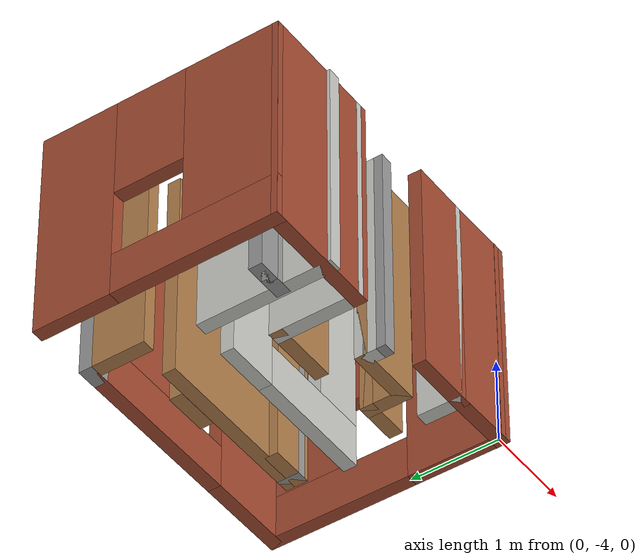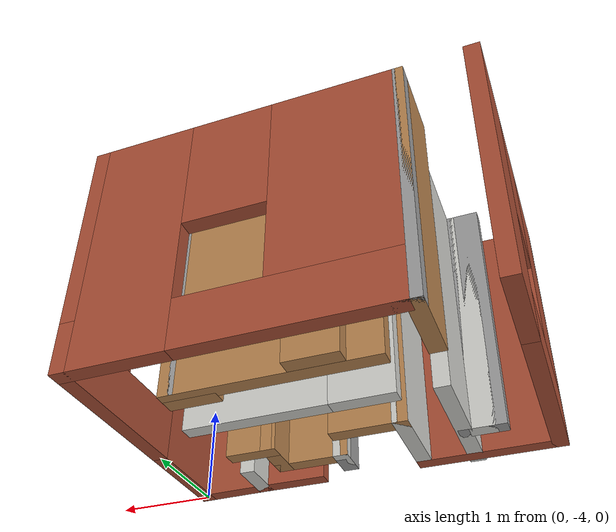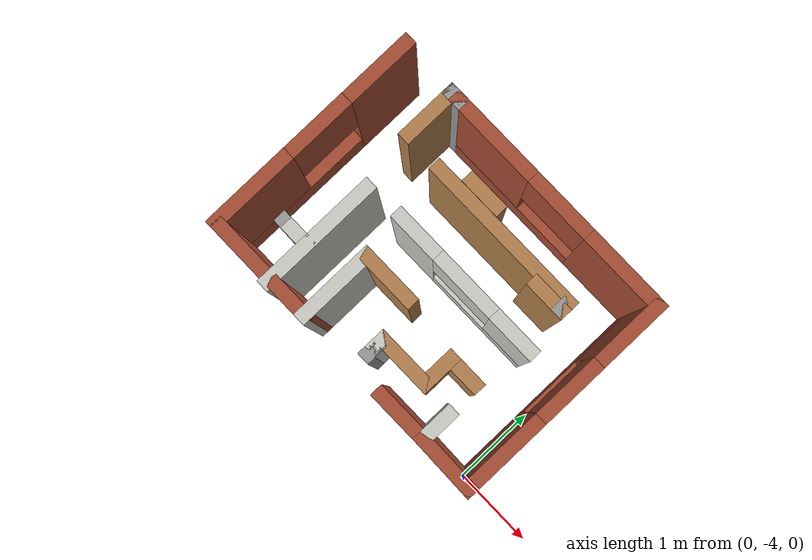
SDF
<?xml version='1.0'?>
<sdf version='1.6'>
  <model name='labyrinth'>
    <pose frame=''>-1.80242 -2.69405 0 0 -0 0</pose>
    <link name='Wall_0'>
      <collision name='Wall_0_Collision'>
        <geometry>
          <box>
            <size>0.25 0.15 2.5</size>
          </box>
        </geometry>
        <pose frame=''>0 0 1.25 0 -0 0</pose>
      </collision>
      <visual name='Wall_0_Visual'>
        <pose frame=''>0 0 1.25 0 -0 0</pose>
        <geometry>
          <box>
            <size>0.25 0.15 2.5</size>
          </box>
        </geometry>
        <material>
          <script>
            <uri>file://media/materials/scripts/gazebo.material</uri>
            <name>Gazebo/Grey</name>
          </script>
          <ambient>1 1 1 1</ambient>
        </material>
        <meta>
          <layer>0</layer>
        </meta>
      </visual>
      <pose frame=''>0.17411 -1.04199 0 0 -0 1.5708</pose>
    </link>
    <link name='Wall_1'>
      <collision name='Wall_1_Collision'>
        <geometry>
          <box>
            <size>0.25 0.15 2.5</size>
          </box>
        </geometry>
        <pose frame=''>0 0 1.25 0 -0 0</pose>
      </collision>
      <visual name='Wall_1_Visual'>
        <pose frame=''>0 0 1.25 0 -0 0</pose>
        <geometry>
          <box>
            <size>0.25 0.15 2.5</size>
          </box>
        </geometry>
        <material>
          <script>
            <uri>file://media/materials/scripts/gazebo.material</uri>
            <name>Gazebo/CeilingTiled</name>
          </script>
          <ambient>1 1 1 1</ambient>
        </material>
        <meta>
          <layer>0</layer>
        </meta>
      </visual>
      <pose frame=''>0.17411 -0.94199 0 0 -0 1.5708</pose>
    </link>
    <link name='Wall_10'>
      <collision name='Wall_10_Collision'>
        <geometry>
          <box>
            <size>1 0.15 2.5</size>
          </box>
        </geometry>
        <pose frame=''>0 0 1.25 0 -0 0</pose>
      </collision>
      <visual name='Wall_10_Visual'>
        <pose frame=''>0 0 1.25 0 -0 0</pose>
        <geometry>
          <box>
            <size>1 0.15 2.5</size>
          </box>
        </geometry>
        <material>
          <script>
            <uri>file://media/materials/scripts/gazebo.material</uri>
            <name>Gazebo/CeilingTiled</name>
          </script>
          <ambient>1 1 1 1</ambient>
        </material>
        <meta>
          <layer>0</layer>
        </meta>
      </visual>
      <pose frame=''>-0.542589 -0.860288 0 0 -0 1.5708</pose>
    </link>
    <link name='Wall_11'>
      <collision name='Wall_11_Collision'>
        <geometry>
          <box>
            <size>0.75 0.15 2.5</size>
          </box>
        </geometry>
        <pose frame=''>0 0 1.25 0 -0 0</pose>
      </collision>
      <visual name='Wall_11_Visual'>
        <pose frame=''>0 0 1.25 0 -0 0</pose>
        <geometry>
          <box>
            <size>0.75 0.15 2.5</size>
          </box>
        </geometry>
        <material>
          <script>
            <uri>file://media/materials/scripts/gazebo.material</uri>
            <name>Gazebo/Wood</name>
          </script>
          <ambient>1 1 1 1</ambient>
        </material>
        <meta>
          <layer>0</layer>
        </meta>
      </visual>
      <pose frame=''>-0.242589 -0.435288 0 0 -0 0</pose>
    </link>
    <link name='Wall_2'>
      <collision name='Wall_2_Collision'>
        <geometry>
          <box>
            <size>0.75 0.15 2.5</size>
          </box>
        </geometry>
        <pose frame=''>0 0 1.25 0 -0 0</pose>
      </collision>
      <visual name='Wall_2_Visual'>
        <pose frame=''>0 0 1.25 0 -0 0</pose>
        <geometry>
          <box>
            <size>0.75 0.15 2.5</size>
          </box>
        </geometry>
        <material>
          <script>
            <uri>file://media/materials/scripts/gazebo.material</uri>
            <name>Gazebo/Wood</name>
          </script>
          <ambient>1 1 1 1</ambient>
        </material>
        <meta>
          <layer>0</layer>
        </meta>
      </visual>
      <pose frame=''>0.47411 -0.89199 0 0 -0 0</pose>
    </link>
    <link name='Wall_23'>
      <collision name='Wall_23_Collision'>
        <geometry>
          <box>
            <size>1.5 0.15 2.5</size>
          </box>
        </geometry>
        <pose frame=''>0 0 1.25 0 -0 0</pose>
      </collision>
      <visual name='Wall_23_Visual'>
        <pose frame=''>0 0 1.25 0 -0 0</pose>
        <geometry>
          <box>
            <size>1.5 0.15 2.5</size>
          </box>
        </geometry>
        <material>
          <script>
            <uri>file://media/materials/scripts/gazebo.material</uri>
            <name>Gazebo/CeilingTiled</name>
          </script>
          <ambient>1 1 1 1</ambient>
        </material>
        <meta>
          <layer>0</layer>
        </meta>
      </visual>
      <pose frame=''>-1.03415 -0.644148 0 0 -0 1.5708</pose>
    </link>
    <link name='Wall_25'>
      <pose frame=''>0.336979 0.079718 0 0 -0 0</pose>
      <visual name='Wall_25_Visual_0'>
        <pose frame=''>-0.694798 0 1.25 0 -0 0</pose>
        <geometry>
          <box>
            <size>0.610403 0.15 2.5</size>
          </box>
        </geometry>
        <material>
          <script>
            <uri>file://media/materials/scripts/gazebo.material</uri>
            <name>Gazebo/CeilingTiled</name>
          </script>
          <ambient>1 1 1 1</ambient>
        </material>
        <meta>
          <layer>0</layer>
        </meta>
      </visual>
      <collision name='Wall_25_Collision_0'>
        <geometry>
          <box>
            <size>0.610403 0.15 2.5</size>
          </box>
        </geometry>
        <pose frame=''>-0.694798 0 1.25 0 -0 0</pose>
      </collision>
      <visual name='Wall_25_Visual_1'>
        <pose frame=''>0.305202 0 0.25 0 -0 0</pose>
        <geometry>
          <box>
            <size>1.3896 0.15 0.5</size>
          </box>
        </geometry>
        <material>
          <script>
            <uri>file://media/materials/scripts/gazebo.material</uri>
            <name>Gazebo/CeilingTiled</name>
          </script>
          <ambient>1 1 1 1</ambient>
        </material>
        <meta>
          <layer>0</layer>
        </meta>
      </visual>
      <collision name='Wall_25_Collision_1'>
        <geometry>
          <box>
            <size>1.3896 0.15 0.5</size>
          </box>
        </geometry>
        <pose frame=''>0.305202 0 0.25 0 -0 0</pose>
      </collision>
      <visual name='Wall_25_Visual_2'>
        <pose frame=''>0.705202 0 1.5 0 -0 0</pose>
        <geometry>
          <box>
            <size>0.589597 0.15 2</size>
          </box>
        </geometry>
        <material>
          <script>
            <uri>file://media/materials/scripts/gazebo.material</uri>
            <name>Gazebo/CeilingTiled</name>
          </script>
          <ambient>1 1 1 1</ambient>
        </material>
        <meta>
          <layer>0</layer>
        </meta>
      </visual>
      <collision name='Wall_25_Collision_2'>
        <geometry>
          <box>
            <size>0.589597 0.15 2</size>
          </box>
        </geometry>
        <pose frame=''>0.705202 0 1.5 0 -0 0</pose>
      </collision>
      <visual name='Wall_25_Visual_3'>
        <pose frame=''>0.010403 0 1.9 0 -0 0</pose>
        <geometry>
          <box>
            <size>0.8 0.15 1.2</size>
          </box>
        </geometry>
        <material>
          <script>
            <uri>file://media/materials/scripts/gazebo.material</uri>
            <name>Gazebo/CeilingTiled</name>
          </script>
          <ambient>1 1 1 1</ambient>
        </material>
        <meta>
          <layer>0</layer>
        </meta>
      </visual>
      <collision name='Wall_25_Collision_3'>
        <geometry>
          <box>
            <size>0.8 0.15 1.2</size>
          </box>
        </geometry>
        <pose frame=''>0.010403 0 1.9 0 -0 0</pose>
      </collision>
    </link>
    <link name='Wall_27'>
      <pose frame=''>1.81652 0.003537 0 0 -0 1.5708</pose>
      <visual name='Wall_27_Visual_0'>
        <pose frame=''>-0.842738 0 1.25 0 -0 0</pose>
        <geometry>
          <box>
            <size>1.06452 0.15 2.5</size>
          </box>
        </geometry>
        <material>
          <script>
            <uri>file://media/materials/scripts/gazebo.material</uri>
            <name>Gazebo/Bricks</name>
          </script>
          <ambient>1 1 1 1</ambient>
        </material>
        <meta>
          <layer>0</layer>
        </meta>
      </visual>
      <collision name='Wall_27_Collision_0'>
        <geometry>
          <box>
            <size>1.06452 0.15 2.5</size>
          </box>
        </geometry>
        <pose frame=''>-0.842738 0 1.25 0 -0 0</pose>
      </collision>
      <visual name='Wall_27_Visual_1'>
        <pose frame=''>0.532262 0 0.25 0 -0 0</pose>
        <geometry>
          <box>
            <size>1.68548 0.15 0.5</size>
          </box>
        </geometry>
        <material>
          <script>
            <uri>file://media/materials/scripts/gazebo.material</uri>
            <name>Gazebo/Bricks</name>
          </script>
          <ambient>1 1 1 1</ambient>
        </material>
        <meta>
          <layer>0</layer>
        </meta>
      </visual>
      <collision name='Wall_27_Collision_1'>
        <geometry>
          <box>
            <size>1.68548 0.15 0.5</size>
          </box>
        </geometry>
        <pose frame=''>0.532262 0 0.25 0 -0 0</pose>
      </collision>
      <visual name='Wall_27_Visual_2'>
        <pose frame=''>0.932262 0 1.5 0 -0 0</pose>
        <geometry>
          <box>
            <size>0.885476 0.15 2</size>
          </box>
        </geometry>
        <material>
          <script>
            <uri>file://media/materials/scripts/gazebo.material</uri>
            <name>Gazebo/Bricks</name>
          </script>
          <ambient>1 1 1 1</ambient>
        </material>
        <meta>
          <layer>0</layer>
        </meta>
      </visual>
      <collision name='Wall_27_Collision_2'>
        <geometry>
          <box>
            <size>0.885476 0.15 2</size>
          </box>
        </geometry>
        <pose frame=''>0.932262 0 1.5 0 -0 0</pose>
      </collision>
      <visual name='Wall_27_Visual_3'>
        <pose frame=''>0.089524 0 1.9 0 -0 0</pose>
        <geometry>
          <box>
            <size>0.8 0.15 1.2</size>
          </box>
        </geometry>
        <material>
          <script>
            <uri>file://media/materials/scripts/gazebo.material</uri>
            <name>Gazebo/Bricks</name>
          </script>
          <ambient>1 1 1 1</ambient>
        </material>
        <meta>
          <layer>0</layer>
        </meta>
      </visual>
      <collision name='Wall_27_Collision_3'>
        <geometry>
          <box>
            <size>0.8 0.15 1.2</size>
          </box>
        </geometry>
        <pose frame=''>0.089524 0 1.9 0 -0 0</pose>
      </collision>
    </link>
    <link name='Wall_28'>
      <pose frame=''>0.391516 1.30354 0 0 -0 3.14159</pose>
      <visual name='Wall_28_Visual_0'>
        <pose frame=''>-0.971411 0 1.25 0 -0 0</pose>
        <geometry>
          <box>
            <size>1.05718 0.15 2.5</size>
          </box>
        </geometry>
        <material>
          <script>
            <uri>file://media/materials/scripts/gazebo.material</uri>
            <name>Gazebo/Bricks</name>
          </script>
          <ambient>1 1 1 1</ambient>
        </material>
        <meta>
          <layer>0</layer>
        </meta>
      </visual>
      <collision name='Wall_28_Collision_0'>
        <geometry>
          <box>
            <size>1.05718 0.15 2.5</size>
          </box>
        </geometry>
        <pose frame=''>-0.971411 0 1.25 0 -0 0</pose>
      </collision>
      <visual name='Wall_28_Visual_1'>
        <pose frame=''>0.528589 0 0.25 0 -0 0</pose>
        <geometry>
          <box>
            <size>1.94282 0.15 0.5</size>
          </box>
        </geometry>
        <material>
          <script>
            <uri>file://media/materials/scripts/gazebo.material</uri>
            <name>Gazebo/Bricks</name>
          </script>
          <ambient>1 1 1 1</ambient>
        </material>
        <meta>
          <layer>0</layer>
        </meta>
      </visual>
      <collision name='Wall_28_Collision_1'>
        <geometry>
          <box>
            <size>1.94282 0.15 0.5</size>
          </box>
        </geometry>
        <pose frame=''>0.528589 0 0.25 0 -0 0</pose>
      </collision>
      <visual name='Wall_28_Visual_2'>
        <pose frame=''>0.928589 0 1.5 0 -0 0</pose>
        <geometry>
          <box>
            <size>1.14282 0.15 2</size>
          </box>
        </geometry>
        <material>
          <script>
            <uri>file://media/materials/scripts/gazebo.material</uri>
            <name>Gazebo/Bricks</name>
          </script>
          <ambient>1 1 1 1</ambient>
        </material>
        <meta>
          <layer>0</layer>
        </meta>
      </visual>
      <collision name='Wall_28_Collision_2'>
        <geometry>
          <box>
            <size>1.14282 0.15 2</size>
          </box>
        </geometry>
        <pose frame=''>0.928589 0 1.5 0 -0 0</pose>
      </collision>
      <visual name='Wall_28_Visual_3'>
        <pose frame=''>-0.042823 0 1.9 0 -0 0</pose>
        <geometry>
          <box>
            <size>0.8 0.15 1.2</size>
          </box>
        </geometry>
        <material>
          <script>
            <uri>file://media/materials/scripts/gazebo.material</uri>
            <name>Gazebo/Bricks</name>
          </script>
          <ambient>1 1 1 1</ambient>
        </material>
        <meta>
          <layer>0</layer>
        </meta>
      </visual>
      <collision name='Wall_28_Collision_3'>
        <geometry>
          <box>
            <size>0.8 0.15 1.2</size>
          </box>
        </geometry>
        <pose frame=''>-0.042823 0 1.9 0 -0 0</pose>
      </collision>
    </link>
    <link name='Wall_3'>
      <collision name='Wall_3_Collision'>
        <geometry>
          <box>
            <size>0.5 0.15 2.5</size>
          </box>
        </geometry>
        <pose frame=''>0 0 1.25 0 -0 0</pose>
      </collision>
      <visual name='Wall_3_Visual'>
        <pose frame=''>0 0 1.25 0 -0 0</pose>
        <geometry>
          <box>
            <size>0.5 0.15 2.5</size>
          </box>
        </geometry>
        <material>
          <script>
            <uri>file://media/materials/scripts/gazebo.material</uri>
            <name>Gazebo/Wood</name>
          </script>
          <ambient>1 1 1 1</ambient>
        </material>
        <meta>
          <layer>0</layer>
        </meta>
      </visual>
      <pose frame=''>0.77411 -0.71699 0 0 -0 1.5708</pose>
    </link>
    <link name='Wall_30'>
      <collision name='Wall_30_Collision'>
        <geometry>
          <box>
            <size>2 0.15 2.5</size>
          </box>
        </geometry>
        <pose frame=''>0 0 1.25 0 -0 0</pose>
      </collision>
      <visual name='Wall_30_Visual'>
        <pose frame=''>0 0 1.25 0 -0 0</pose>
        <geometry>
          <box>
            <size>2 0.15 2.5</size>
          </box>
        </geometry>
        <material>
          <script>
            <uri>file://media/materials/scripts/gazebo.material</uri>
            <name>Gazebo/Wood</name>
          </script>
          <ambient>1 1 1 1</ambient>
        </material>
        <meta>
          <layer>0</layer>
        </meta>
      </visual>
      <pose frame=''>0.253804 0.684633 0 0 -0 0</pose>
    </link>
    <link name='Wall_32'>
      <collision name='Wall_32_Collision'>
        <geometry>
          <box>
            <size>0.5 0.15 2.5</size>
          </box>
        </geometry>
        <pose frame=''>0 0 1.25 0 -0 0</pose>
      </collision>
      <visual name='Wall_32_Visual'>
        <pose frame=''>0 0 1.25 0 -0 0</pose>
        <geometry>
          <box>
            <size>0.5 0.15 2.5</size>
          </box>
        </geometry>
        <material>
          <script>
            <uri>file://media/materials/scripts/gazebo.material</uri>
            <name>Gazebo/Wood</name>
          </script>
          <ambient>1 1 1 1</ambient>
        </material>
        <meta>
          <layer>0</layer>
        </meta>
      </visual>
      <pose frame=''>-0.178616 0.835862 0 0 -0 0</pose>
    </link>
    <link name='Wall_35'>
      <collision name='Wall_35_Collision'>
        <geometry>
          <box>
            <size>0.25 0.15 2.5</size>
          </box>
        </geometry>
        <pose frame=''>0 0 1.25 0 -0 0</pose>
      </collision>
      <visual name='Wall_35_Visual'>
        <pose frame=''>0 0 1.25 0 -0 0</pose>
        <geometry>
          <box>
            <size>0.25 0.15 2.5</size>
          </box>
        </geometry>
        <material>
          <script>
            <uri>file://media/materials/scripts/gazebo.material</uri>
            <name>Gazebo/Grey</name>
          </script>
          <ambient>1 1 1 1</ambient>
        </material>
        <meta>
          <layer>0</layer>
        </meta>
      </visual>
      <pose frame=''>1.1788 0.634633 0 0 -0 -1.5708</pose>
    </link>
    <link name='Wall_36'>
      <collision name='Wall_36_Collision'>
        <geometry>
          <box>
            <size>0.5 0.15 2.5</size>
          </box>
        </geometry>
        <pose frame=''>0 0 1.25 0 -0 0</pose>
      </collision>
      <visual name='Wall_36_Visual'>
        <pose frame=''>0 0 1.25 0 -0 0</pose>
        <geometry>
          <box>
            <size>0.5 0.15 2.5</size>
          </box>
        </geometry>
        <material>
          <script>
            <uri>file://media/materials/scripts/gazebo.material</uri>
            <name>Gazebo/Wood</name>
          </script>
          <ambient>1 1 1 1</ambient>
        </material>
        <meta>
          <layer>0</layer>
        </meta>
      </visual>
      <pose frame=''>1.0038 0.584633 0 0 -0 3.14159</pose>
    </link>
    <link name='Wall_38'>
      <collision name='Wall_38_Collision'>
        <geometry>
          <box>
            <size>0.808801 0.15 2.5</size>
          </box>
        </geometry>
        <pose frame=''>0 0 1.25 0 -0 0</pose>
      </collision>
      <visual name='Wall_38_Visual'>
        <pose frame=''>0 0 1.25 0 -0 0</pose>
        <geometry>
          <box>
            <size>0.808801 0.15 2.5</size>
          </box>
        </geometry>
        <material>
          <script>
            <uri>file://media/materials/scripts/gazebo.material</uri>
            <name>Gazebo/Bricks</name>
          </script>
          <ambient>1 1 1 1</ambient>
        </material>
        <meta>
          <layer>0</layer>
        </meta>
      </visual>
      <pose frame=''>1.48719 -1.28946 0 0 -0 3.12031</pose>
    </link>
    <link name='Wall_4'>
      <collision name='Wall_4_Collision'>
        <geometry>
          <box>
            <size>0.5 0.15 2.5</size>
          </box>
        </geometry>
        <pose frame=''>0 0 1.25 0 -0 0</pose>
      </collision>
      <visual name='Wall_4_Visual'>
        <pose frame=''>0 0 1.25 0 -0 0</pose>
        <geometry>
          <box>
            <size>0.5 0.15 2.5</size>
          </box>
        </geometry>
        <material>
          <script>
            <uri>file://media/materials/scripts/gazebo.material</uri>
            <name>Gazebo/Wood</name>
          </script>
          <ambient>1 1 1 1</ambient>
        </material>
        <meta>
          <layer>0</layer>
        </meta>
      </visual>
      <pose frame=''>0.94911 -0.54199 0 0 -0 0</pose>
    </link>
    <link name='Wall_46'>
      <collision name='Wall_46_Collision'>
        <geometry>
          <box>
            <size>0.25 0.15 2.5</size>
          </box>
        </geometry>
        <pose frame=''>0 0 1.25 0 -0 0</pose>
      </collision>
      <visual name='Wall_46_Visual'>
        <pose frame=''>0 0 1.25 0 -0 0</pose>
        <geometry>
          <box>
            <size>0.25 0.15 2.5</size>
          </box>
        </geometry>
        <material>
          <script>
            <uri>file://media/materials/scripts/gazebo.material</uri>
            <name>Gazebo/Grey</name>
          </script>
          <ambient>1 1 1 1</ambient>
        </material>
        <meta>
          <layer>0</layer>
        </meta>
      </visual>
      <pose frame=''>-1.30626 -0.785367 0 0 -0 0</pose>
    </link>
    <link name='Wall_47'>
      <collision name='Wall_47_Collision'>
        <geometry>
          <box>
            <size>0.25 0.15 2.5</size>
          </box>
        </geometry>
        <pose frame=''>0 0 1.25 0 -0 0</pose>
      </collision>
      <visual name='Wall_47_Visual'>
        <pose frame=''>0 0 1.25 0 -0 0</pose>
        <geometry>
          <box>
            <size>0.25 0.15 2.5</size>
          </box>
        </geometry>
        <material>
          <script>
            <uri>file://media/materials/scripts/gazebo.material</uri>
            <name>Gazebo/CeilingTiled</name>
          </script>
          <ambient>1 1 1 1</ambient>
        </material>
        <meta>
          <layer>0</layer>
        </meta>
      </visual>
      <pose frame=''>-1.20626 -0.785367 0 0 -0 0</pose>
    </link>
    <link name='Wall_48'>
      <collision name='Wall_48_Collision'>
        <geometry>
          <box>
            <size>0.25 0.15 2.5</size>
          </box>
        </geometry>
        <pose frame=''>0 0 1.25 0 -0 0</pose>
      </collision>
      <visual name='Wall_48_Visual'>
        <pose frame=''>0 0 1.25 0 -0 0</pose>
        <geometry>
          <box>
            <size>0.25 0.15 2.5</size>
          </box>
        </geometry>
        <material>
          <script>
            <uri>file://media/materials/scripts/gazebo.material</uri>
            <name>Gazebo/Grey</name>
          </script>
          <ambient>1 1 1 1</ambient>
        </material>
        <meta>
          <layer>0</layer>
        </meta>
      </visual>
      <pose frame=''>-1.10626 -0.785367 0 0 -0 0</pose>
    </link>
    <link name='Wall_50'>
      <collision name='Wall_50_Collision'>
        <geometry>
          <box>
            <size>0.25 0.15 2.5</size>
          </box>
        </geometry>
        <pose frame=''>0 0 1.25 0 -0 0</pose>
      </collision>
      <visual name='Wall_50_Visual'>
        <pose frame=''>0 0 1.25 0 -0 0</pose>
        <geometry>
          <box>
            <size>0.25 0.15 2.5</size>
          </box>
        </geometry>
        <material>
          <script>
            <uri>file://media/materials/scripts/gazebo.material</uri>
            <name>Gazebo/Grey</name>
          </script>
          <ambient>1 1 1 1</ambient>
        </material>
        <meta>
          <layer>0</layer>
        </meta>
      </visual>
      <pose frame=''>-1.08348 1.30354 0 0 -0 3.14159</pose>
    </link>
    <link name='Wall_51'>
      <collision name='Wall_51_Collision'>
        <geometry>
          <box>
            <size>0.75 0.15 2.5</size>
          </box>
        </geometry>
        <pose frame=''>0 0 1.25 0 -0 0</pose>
      </collision>
      <visual name='Wall_51_Visual'>
        <pose frame=''>0 0 1.25 0 -0 0</pose>
        <geometry>
          <box>
            <size>0.75 0.15 2.5</size>
          </box>
        </geometry>
        <material>
          <script>
            <uri>file://media/materials/scripts/gazebo.material</uri>
            <name>Gazebo/Wood</name>
          </script>
          <ambient>1 1 1 1</ambient>
        </material>
        <meta>
          <layer>0</layer>
        </meta>
      </visual>
      <pose frame=''>-1.13348 1.00354 0 0 -0 -1.5708</pose>
    </link>
    <link name='Wall_56'>
      <pose frame=''>-1.81784 0.019148 0 0 -0 -1.5708</pose>
      <visual name='Wall_56_Visual_0'>
        <pose frame=''>-0.933152 0 1.25 0 -0 0</pose>
        <geometry>
          <box>
            <size>0.883696 0.15 2.5</size>
          </box>
        </geometry>
        <material>
          <script>
            <uri>file://media/materials/scripts/gazebo.material</uri>
            <name>Gazebo/Bricks</name>
          </script>
          <ambient>1 1 1 1</ambient>
        </material>
        <meta>
          <layer>0</layer>
        </meta>
      </visual>
      <collision name='Wall_56_Collision_0'>
        <geometry>
          <box>
            <size>0.883696 0.15 2.5</size>
          </box>
        </geometry>
        <pose frame=''>-0.933152 0 1.25 0 -0 0</pose>
      </collision>
      <visual name='Wall_56_Visual_1'>
        <pose frame=''>0.441848 0 0.25 0 -0 0</pose>
        <geometry>
          <box>
            <size>1.8663 0.15 0.5</size>
          </box>
        </geometry>
        <material>
          <script>
            <uri>file://media/materials/scripts/gazebo.material</uri>
            <name>Gazebo/Bricks</name>
          </script>
          <ambient>1 1 1 1</ambient>
        </material>
        <meta>
          <layer>0</layer>
        </meta>
      </visual>
      <collision name='Wall_56_Collision_1'>
        <geometry>
          <box>
            <size>1.8663 0.15 0.5</size>
          </box>
        </geometry>
        <pose frame=''>0.441848 0 0.25 0 -0 0</pose>
      </collision>
      <visual name='Wall_56_Visual_2'>
        <pose frame=''>0.841848 0 1.5 0 -0 0</pose>
        <geometry>
          <box>
            <size>1.0663 0.15 2</size>
          </box>
        </geometry>
        <material>
          <script>
            <uri>file://media/materials/scripts/gazebo.material</uri>
            <name>Gazebo/Bricks</name>
          </script>
          <ambient>1 1 1 1</ambient>
        </material>
        <meta>
          <layer>0</layer>
        </meta>
      </visual>
      <collision name='Wall_56_Collision_2'>
        <geometry>
          <box>
            <size>1.0663 0.15 2</size>
          </box>
        </geometry>
        <pose frame=''>0.841848 0 1.5 0 -0 0</pose>
      </collision>
      <visual name='Wall_56_Visual_3'>
        <pose frame=''>-0.091304 0 1.9 0 -0 0</pose>
        <geometry>
          <box>
            <size>0.8 0.15 1.2</size>
          </box>
        </geometry>
        <material>
          <script>
            <uri>file://media/materials/scripts/gazebo.material</uri>
            <name>Gazebo/Bricks</name>
          </script>
          <ambient>1 1 1 1</ambient>
        </material>
        <meta>
          <layer>0</layer>
        </meta>
      </visual>
      <collision name='Wall_56_Collision_3'>
        <geometry>
          <box>
            <size>0.8 0.15 1.2</size>
          </box>
        </geometry>
        <pose frame=''>-0.091304 0 1.9 0 -0 0</pose>
      </collision>
    </link>
    <link name='Wall_57'>
      <collision name='Wall_57_Collision'>
        <geometry>
          <box>
            <size>1.42525 0.15 2.5</size>
          </box>
        </geometry>
        <pose frame=''>0 0 1.25 0 -0 0</pose>
      </collision>
      <visual name='Wall_57_Visual'>
        <pose frame=''>0 0 1.25 0 -0 0</pose>
        <geometry>
          <box>
            <size>1.42525 0.15 2.5</size>
          </box>
        </geometry>
        <material>
          <script>
            <uri>file://media/materials/scripts/gazebo.material</uri>
            <name>Gazebo/Bricks</name>
          </script>
          <ambient>1 1 1 1</ambient>
        </material>
        <meta>
          <layer>0</layer>
        </meta>
      </visual>
      <pose frame=''>-1.18021 -1.28307 0 0 -0 -0.003479</pose>
    </link>
    <link name='Wall_6'>
      <collision name='Wall_6_Collision'>
        <geometry>
          <box>
            <size>0.75 0.15 2.5</size>
          </box>
        </geometry>
        <pose frame=''>0 0 1.25 0 -0 0</pose>
      </collision>
      <visual name='Wall_6_Visual'>
        <pose frame=''>0 0 1.25 0 -0 0</pose>
        <geometry>
          <box>
            <size>0.75 0.15 2.5</size>
          </box>
        </geometry>
        <material>
          <script>
            <uri>file://media/materials/scripts/gazebo.material</uri>
            <name>Gazebo/Bricks</name>
          </script>
          <ambient>1 1 1 1</ambient>
        </material>
        <meta>
          <layer>0</layer>
        </meta>
      </visual>
      <pose frame=''>0.857864 -1.28245 0 0 -0 0</pose>
    </link>
    <link name='Wall_7'>
      <collision name='Wall_7_Collision'>
        <geometry>
          <box>
            <size>0.5 0.15 2.5</size>
          </box>
        </geometry>
        <pose frame=''>0 0 1.25 0 -0 0</pose>
      </collision>
      <visual name='Wall_7_Visual'>
        <pose frame=''>0 0 1.25 0 -0 0</pose>
        <geometry>
          <box>
            <size>0.5 0.15 2.5</size>
          </box>
        </geometry>
        <material>
          <script>
            <uri>file://media/materials/scripts/gazebo.material</uri>
            <name>Gazebo/CeilingTiled</name>
          </script>
          <ambient>1 1 1 1</ambient>
        </material>
        <meta>
          <layer>0</layer>
        </meta>
      </visual>
      <pose frame=''>1.15786 -1.10745 0 0 -0 1.5708</pose>
    </link>
    <static>1</static>
  </model>
</sdf>
